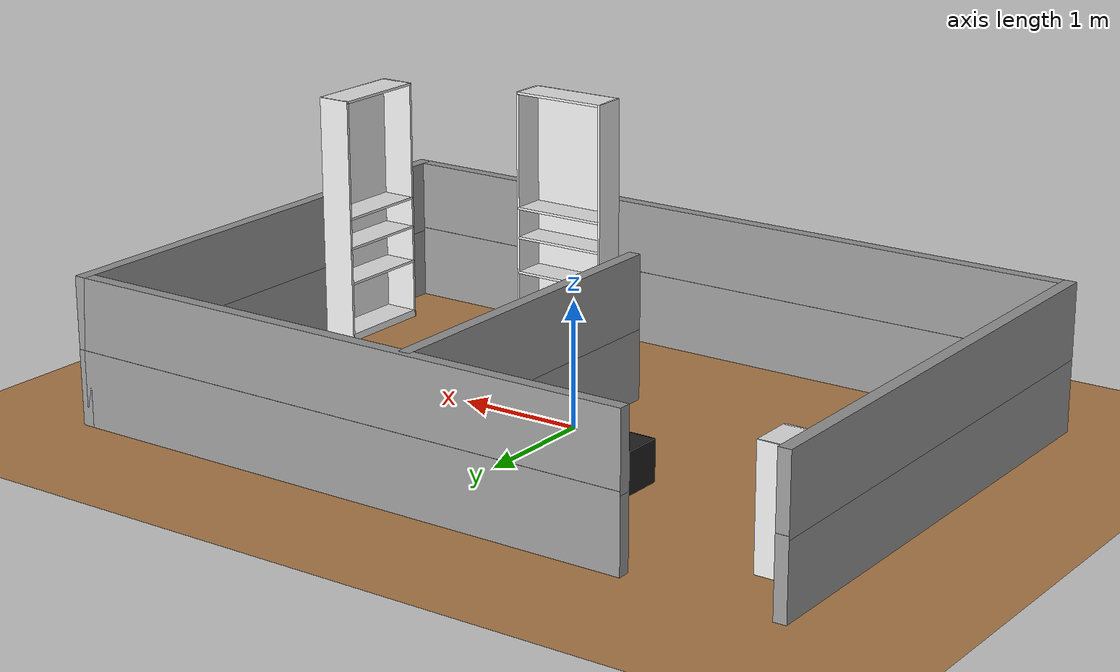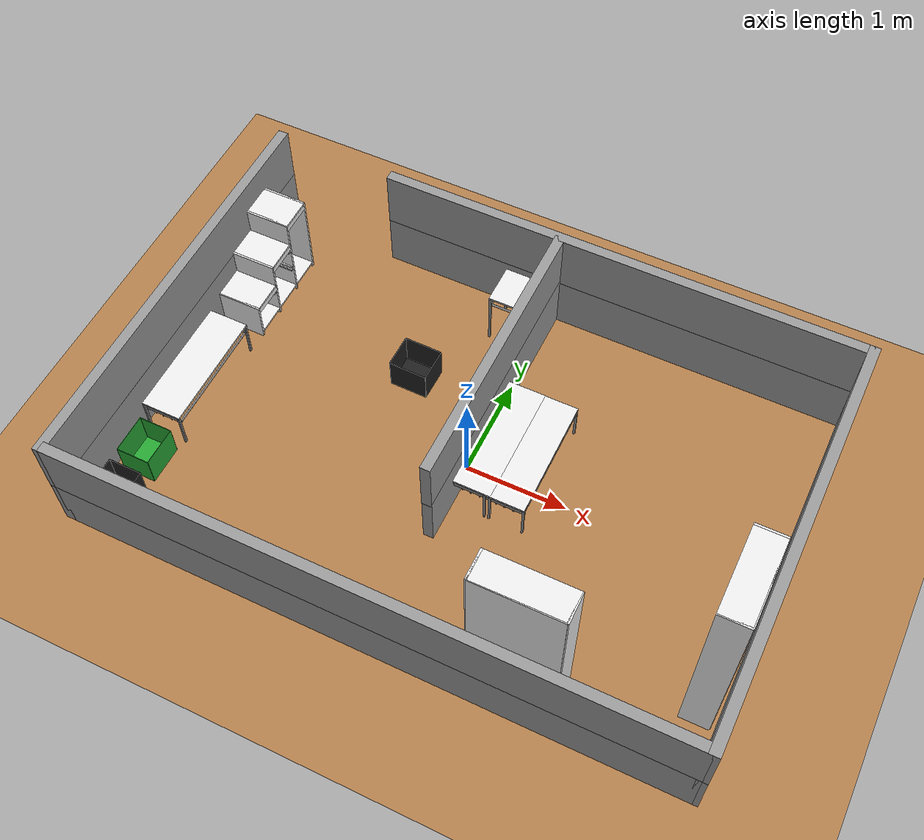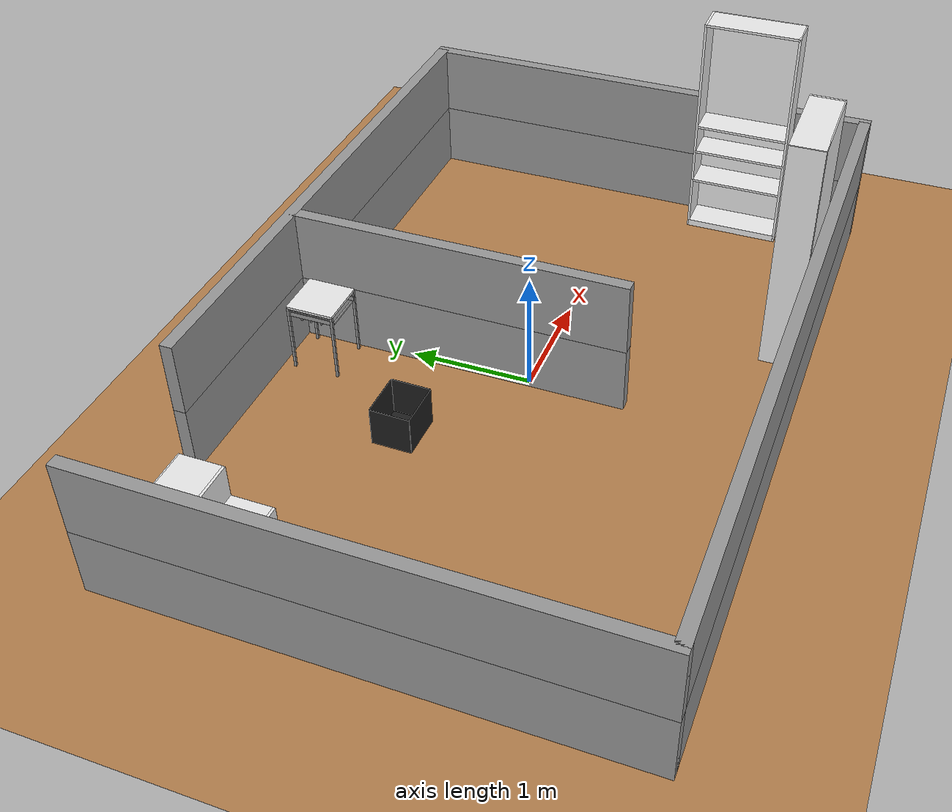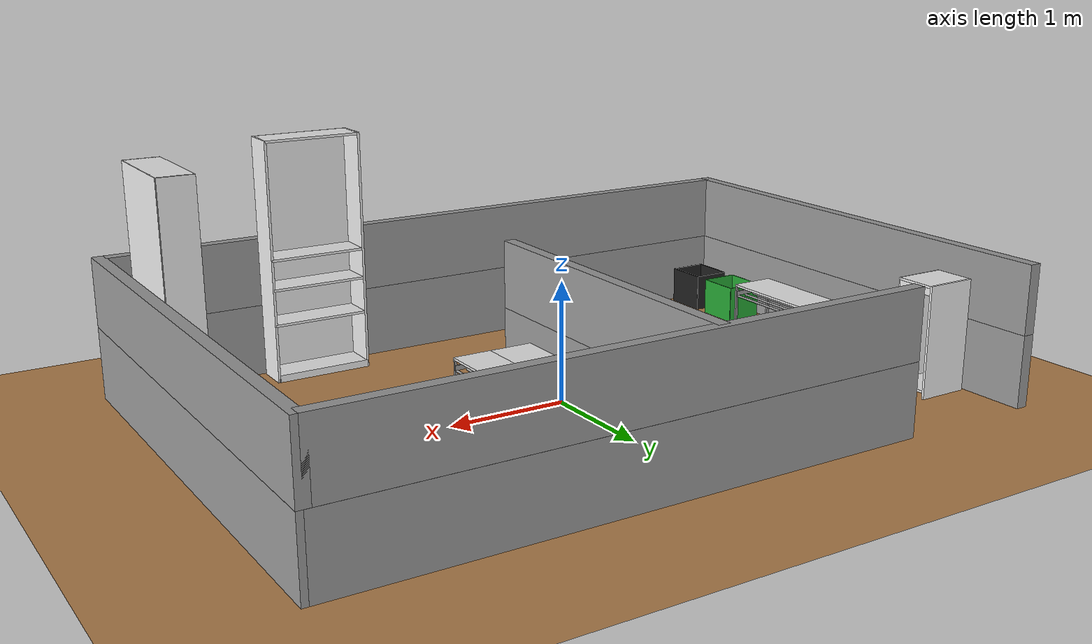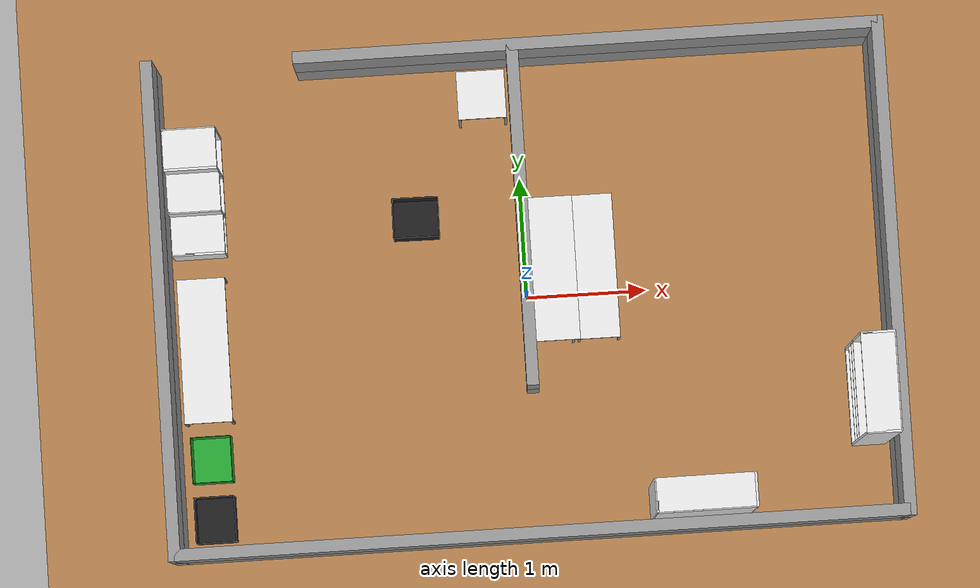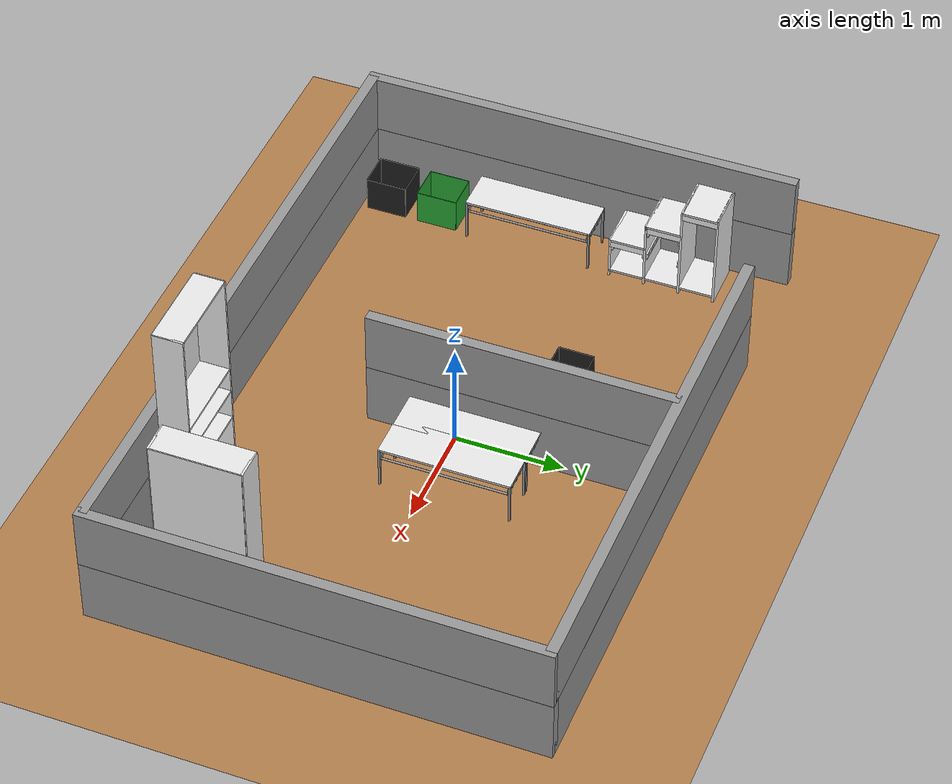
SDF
<sdf version="1.6">
 <world name="default">
  <light name="sun" type="directional">
   <pose>0 0 10 0 -0 0</pose>
   <diffuse>0.8 0.8 0.8 1</diffuse>
   <specular>0.2 0.2 0.2 1</specular>
   <attenuation>
    <range>1000</range>
    <constant>0.9</constant>
    <linear>0.01</linear>
    <quadratic>0.001</quadratic>
   </attenuation>
   <direction>-0.5 0.1 -0.9</direction>
  </light>
  <gravity>0 0 -9.8</gravity>
  <physics name="default_physics" default="0" type="ode">
   <max_step_size>0.001</max_step_size>
   <real_time_factor>1</real_time_factor>
   <real_time_update_rate>1000</real_time_update_rate>
  </physics>
  <scene><ambient>0.4 0.4 0.4 1</ambient><background>0.7 0.7 0.7 1</background><shadows>1</shadows></scene>
  <model name="wrc_ground_plane">
   <static>1</static>
   <link name="link">
    <collision name="collision">
     <geometry><plane><normal>0 0 1</normal><size>10 10</size></plane></geometry>
     <surface>
      <contact><collide_bitmask>65535</collide_bitmask></contact>
      <friction><ode><mu>100</mu><mu2>50</mu2></ode></friction>
     </surface>
    </collision>
    <visual name="visual">
     <cast_shadows>0</cast_shadows>
     <geometry><plane><normal>0 0 1</normal><size>10 10</size></plane></geometry>
     <material>
      <script><uri>model://wrc_ground_plane/materials/wood.material</uri><name>WRS/WoodFloor</name></script>
     </material>
    </visual>
   </link>
  </model>
  <model name="wrc_frame">
   <static>1</static>
   <link name="link">
    <inertial><mass>1</mass></inertial>
    <collision name="wall_back">
     <pose>0.6 2 0.3 0 -0 0</pose>
     <geometry><box><size>4.8 0.1 0.6</size></box></geometry>
    </collision>
    <visual name="wall_back_v">
     <pose>0.6 2 0.3 0 -0 0</pose>
     <geometry><box><size>4.8 0.1 0.6</size></box></geometry>
     <material>
      <script><uri>file://media/materials/scripts/gazebo.material</uri><name>Gazebo/Gray</name></script>
     </material>
    </visual>
    <collision name="wall_front">
     <pose>0 -2 0.3 0 -0 0</pose>
     <geometry><box><size>6 0.1 0.6</size></box></geometry>
    </collision>
    <visual name="wall_front_v">
     <pose>0 -2 0.3 0 -0 0</pose>
     <geometry><box><size>6 0.1 0.6</size></box></geometry>
     <material>
      <script><uri>file://media/materials/scripts/gazebo.material</uri><name>Gazebo/Gray</name></script>
     </material>
    </visual>
    <collision name="wall_left">
     <pose>-3 0 0.3 0 -0 0</pose>
     <geometry><box><size>0.1 4.1 0.6</size></box></geometry>
    </collision>
    <visual name="wall_left_v">
     <pose>-3 0 0.3 0 -0 0</pose>
     <geometry><box><size>0.1 4.1 0.6</size></box></geometry>
     <material>
      <script><uri>file://media/materials/scripts/gazebo.material</uri><name>Gazebo/Gray</name></script>
     </material>
    </visual>
    <collision name="wall_right">
     <pose>3 0 0.3 0 -0 0</pose>
     <geometry><box><size>0.1 4.1 0.6</size></box></geometry>
    </collision>
    <visual name="wall_right_v">
     <pose>3 0 0.3 0 -0 0</pose>
     <geometry><box><size>0.1 4.1 0.6</size></box></geometry>
     <material>
      <script><uri>file://media/materials/scripts/gazebo.material</uri><name>Gazebo/Gray</name></script>
     </material>
    </visual>
    <collision name="wall_center">
     <pose>0 0.6 0.3 0 -0 0</pose>
     <geometry><box><size>0.1 2.8 0.6</size></box></geometry>
    </collision>
    <visual name="wall_center_v">
     <pose>0 0.6 0.3 0 -0 0</pose>
     <geometry><box><size>0.1 2.8 0.6</size></box></geometry>
     <material>
      <script><uri>file://media/materials/scripts/gazebo.material</uri><name>Gazebo/Gray</name></script>
     </material>
    </visual>
   </link>
  </model>
  <model name="wrc_bookshelf">
   <static>1</static>
   <link name="link">
    <inertial><mass>1</mass></inertial>
    <collision name="back">
     <pose>0 0.005 1.01 0 -0 0</pose>
     <geometry><box><size>0.8 0.01 2.02</size></box></geometry>
    </collision>
    <visual name="back_v">
     <pose>0 0.14 1.01 0 -0 0</pose>
     <geometry><box><size>0.8 0.01 2.02</size></box></geometry>
     <material>
      <script><uri>file://media/materials/scripts/gazebo.material</uri><name>Gazebo/White</name></script>
     </material>
    </visual>
    <collision name="left_side">
     <pose>0.4 0 1.01 0 -0 0</pose>
     <geometry><box><size>0.02 0.28 2.02</size></box></geometry>
    </collision>
    <visual name="left_side_v">
     <pose>0.4 0 1.01 0 -0 0</pose>
     <geometry><box><size>0.02 0.28 2.02</size></box></geometry>
     <material>
      <script><uri>file://media/materials/scripts/gazebo.material</uri><name>Gazebo/White</name></script>
     </material>
    </visual>
    <collision name="right_side">
     <pose>-0.4 0 1.01 0 -0 0</pose>
     <geometry><box><size>0.02 0.28 2.02</size></box></geometry>
    </collision>
    <visual name="right_side_v">
     <pose>-0.4 0 1.01 0 -0 0</pose>
     <geometry><box><size>0.02 0.28 2.02</size></box></geometry>
     <material>
      <script><uri>file://media/materials/scripts/gazebo.material</uri><name>Gazebo/White</name></script>
     </material>
    </visual>
    <collision name="bottom">
     <pose>0 0 0.03 0 -0 0</pose>
     <geometry><box><size>0.8 0.28 0.06</size></box></geometry>
    </collision>
    <visual name="bottom_v">
     <pose>0 0 0.03 0 -0 0</pose>
     <geometry><box><size>0.8 0.28 0.06</size></box></geometry>
     <material>
      <script><uri>file://media/materials/scripts/gazebo.material</uri><name>Gazebo/White</name></script>
     </material>
    </visual>
    <collision name="top">
     <pose>0 0 2.01 0 -0 0</pose>
     <geometry><box><size>0.8 0.28 0.02</size></box></geometry>
    </collision>
    <visual name="top_v">
     <pose>0 0 2.01 0 -0 0</pose>
     <geometry><box><size>0.8 0.28 0.02</size></box></geometry>
     <material>
      <script><uri>file://media/materials/scripts/gazebo.material</uri><name>Gazebo/White</name></script>
     </material>
    </visual>
    <collision name="slit1">
     <pose>0 0 0.49 0 -0 0</pose>
     <geometry><box><size>0.8 0.28 0.02</size></box></geometry>
    </collision>
    <visual name="slit1_v">
     <pose>0 0 0.49 0 -0 0</pose>
     <geometry><box><size>0.8 0.28 0.02</size></box></geometry>
     <material>
      <script><uri>file://media/materials/scripts/gazebo.material</uri><name>Gazebo/White</name></script>
     </material>
    </visual>
    <collision name="slit2">
     <pose>0 0 0.79 0 -0 0</pose>
     <geometry><box><size>0.8 0.28 0.02</size></box></geometry>
    </collision>
    <visual name="slit2_v">
     <pose>0 0 0.79 0 -0 0</pose>
     <geometry><box><size>0.8 0.28 0.02</size></box></geometry>
     <material>
      <script><uri>file://media/materials/scripts/gazebo.material</uri><name>Gazebo/White</name></script>
     </material>
    </visual>
    <collision name="slit3">
     <pose>0 0 1.04 0 -0 0</pose>
     <geometry><box><size>0.8 0.28 0.02</size></box></geometry>
    </collision>
    <visual name="slit3_v">
     <pose>0 0 1.04 0 -0 0</pose>
     <geometry><box><size>0.8 0.28 0.02</size></box></geometry>
     <material>
      <script><uri>file://media/materials/scripts/gazebo.material</uri><name>Gazebo/White</name></script>
     </material>
    </visual>
   </link>
   <pose>2.7704 -0.999944 0 0 0 -1.57</pose>
  </model>
  <model name="wrc_bin_black">
   <static>1</static>
   <link name="link">
    <inertial><mass>1</mass></inertial>
    <collision name="bottom">
     <pose>0 0 0.002 0 -0 0</pose>
     <geometry><box><size>0.33 0.38 0.004</size></box></geometry>
    </collision>
    <visual name="bottom_v">
     <pose>0 0 0.002 0 -0 0</pose>
     <geometry><box><size>0.33 0.38 0.004</size></box></geometry>
     <material>
      <script><uri>file://media/materials/scripts/gazebo.material</uri><name>Gazebo/Black</name></script>
     </material>
    </visual>
    <collision name="front">
     <pose>0 0.19 0.165 0 -0 0</pose>
     <geometry><box><size>0.33 0.004 0.33</size></box></geometry>
    </collision>
    <visual name="front_v">
     <pose>0 0.19 0.165 0 -0 0</pose>
     <geometry><box><size>0.33 0.004 0.33</size></box></geometry>
     <material>
      <script><uri>file://media/materials/scripts/gazebo.material</uri><name>Gazebo/Black</name></script>
     </material>
    </visual>
    <collision name="back">
     <pose>0 -0.19 0.165 0 -0 0</pose>
     <geometry><box><size>0.33 0.004 0.33</size></box></geometry>
    </collision>
    <visual name="back_v">
     <pose>0 -0.19 0.165 0 -0 0</pose>
     <geometry><box><size>0.33 0.004 0.33</size></box></geometry>
     <material>
      <script><uri>file://media/materials/scripts/gazebo.material</uri><name>Gazebo/Black</name></script>
     </material>
    </visual>
    <collision name="left">
     <pose>0.165 0 0.165 0 -0 0</pose>
     <geometry><box><size>0.004 0.38 0.33</size></box></geometry>
    </collision>
    <visual name="left_v">
     <pose>0.165 0 0.165 0 -0 0</pose>
     <geometry><box><size>0.004 0.38 0.33</size></box></geometry>
     <material>
      <script><uri>file://media/materials/scripts/gazebo.material</uri><name>Gazebo/Black</name></script>
     </material>
    </visual>
    <collision name="right">
     <pose>-0.165 0 0.165 0 -0 0</pose>
     <geometry><box><size>0.004 0.38 0.33</size></box></geometry>
    </collision>
    <visual name="right_v">
     <pose>-0.165 0 0.165 0 -0 0</pose>
     <geometry><box><size>0.004 0.38 0.33</size></box></geometry>
     <material>
      <script><uri>file://media/materials/scripts/gazebo.material</uri><name>Gazebo/Black</name></script>
     </material>
    </visual>
   </link>
   <pose>-2.7 -1.7 0 0 -0 0</pose>
  </model>
  <model name="wrc_bin_green">
   <static>1</static>
   <link name="link">
    <inertial><mass>1</mass></inertial>
    <collision name="bottom">
     <pose>0 0 0.002 0 -0 0</pose>
     <geometry><box><size>0.33 0.38 0.004</size></box></geometry>
    </collision>
    <visual name="bottom_v">
     <pose>0 0 0.002 0 -0 0</pose>
     <geometry><box><size>0.33 0.38 0.004</size></box></geometry>
     <material>
      <script><uri>file://media/materials/scripts/gazebo.material</uri><name>Gazebo/Green</name></script>
     </material>
    </visual>
    <collision name="front">
     <pose>0 0.19 0.165 0 -0 0</pose>
     <geometry><box><size>0.33 0.004 0.33</size></box></geometry>
    </collision>
    <visual name="front_v">
     <pose>0 0.19 0.165 0 -0 0</pose>
     <geometry><box><size>0.33 0.004 0.33</size></box></geometry>
     <material>
      <script><uri>file://media/materials/scripts/gazebo.material</uri><name>Gazebo/Green</name></script>
     </material>
    </visual>
    <collision name="back">
     <pose>0 -0.19 0.165 0 -0 0</pose>
     <geometry><box><size>0.33 0.004 0.33</size></box></geometry>
    </collision>
    <visual name="back_v">
     <pose>0 -0.19 0.165 0 -0 0</pose>
     <geometry><box><size>0.33 0.004 0.33</size></box></geometry>
     <material>
      <script><uri>file://media/materials/scripts/gazebo.material</uri><name>Gazebo/Green</name></script>
     </material>
    </visual>
    <collision name="left">
     <pose>0.165 0 0.165 0 -0 0</pose>
     <geometry><box><size>0.004 0.38 0.33</size></box></geometry>
    </collision>
    <visual name="left_v">
     <pose>0.165 0 0.165 0 -0 0</pose>
     <geometry><box><size>0.004 0.38 0.33</size></box></geometry>
     <material>
      <script><uri>file://media/materials/scripts/gazebo.material</uri><name>Gazebo/Green</name></script>
     </material>
    </visual>
    <collision name="right">
     <pose>-0.165 0 0.165 0 -0 0</pose>
     <geometry><box><size>0.004 0.38 0.33</size></box></geometry>
    </collision>
    <visual name="right_v">
     <pose>-0.165 0 0.165 0 -0 0</pose>
     <geometry><box><size>0.004 0.38 0.33</size></box></geometry>
     <material>
      <script><uri>file://media/materials/scripts/gazebo.material</uri><name>Gazebo/Green</name></script>
     </material>
    </visual>
   </link>
   <pose>-2.7 -1.2 0 0 -0 0</pose>
  </model>
  <model name="wrc_stair_like_drawer">
   <static>1</static>
   <link name="link">
    <inertial><mass>1</mass></inertial>
    <collision name="slit1">
     <pose>0 -0.495 0.21 0 -0 0</pose>
     <geometry><box><size>0.44 0.02 0.42</size></box></geometry>
    </collision>
    <visual name="slit1_v">
     <pose>0 -0.495 0.21 0 -0 0</pose>
     <geometry><box><size>0.44 0.02 0.42</size></box></geometry>
     <material>
      <script><uri>file://media/materials/scripts/gazebo.material</uri><name>Gazebo/White</name></script>
     </material>
    </visual>
    <collision name="holder_slit1_1_left_low">
     <pose>0 -0.48 0.3 0 -0 0</pose>
     <geometry><box><size>0.42 0.02 0.02</size></box></geometry>
    </collision>
    <visual name="holder_slit1_1_left_low_v">
     <pose>0 -0.48 0.3 0 -0 0</pose>
     <geometry><box><size>0.42 0.02 0.02</size></box></geometry>
     <material>
      <script><uri>file://media/materials/scripts/gazebo.material</uri><name>Gazebo/White</name></script>
     </material>
    </visual>
    <collision name="holder_slit1_1_left_high">
     <pose>0 -0.48 0.34 0 -0 0</pose>
     <geometry><box><size>0.42 0.02 0.02</size></box></geometry>
    </collision>
    <visual name="holder_slit1_1_left_high_v">
     <pose>0 -0.48 0.34 0 -0 0</pose>
     <geometry><box><size>0.42 0.02 0.02</size></box></geometry>
     <material>
      <script><uri>file://media/materials/scripts/gazebo.material</uri><name>Gazebo/White</name></script>
     </material>
    </visual>
    <collision name="holder_slit1_1_right_low">
     <pose>0 -0.18 0.3 0 -0 0</pose>
     <geometry><box><size>0.42 0.02 0.02</size></box></geometry>
    </collision>
    <visual name="holder_slit1_1_right_low_v">
     <pose>0 -0.18 0.3 0 -0 0</pose>
     <geometry><box><size>0.42 0.02 0.02</size></box></geometry>
     <material>
      <script><uri>file://media/materials/scripts/gazebo.material</uri><name>Gazebo/White</name></script>
     </material>
    </visual>
    <collision name="holder_slit1_1_right_high">
     <pose>0 -0.18 0.34 0 -0 0</pose>
     <geometry><box><size>0.42 0.02 0.02</size></box></geometry>
    </collision>
    <visual name="holder_slit1_1_right_high_v">
     <pose>0 -0.18 0.34 0 -0 0</pose>
     <geometry><box><size>0.42 0.02 0.02</size></box></geometry>
     <material>
      <script><uri>file://media/materials/scripts/gazebo.material</uri><name>Gazebo/White</name></script>
     </material>
    </visual>
    <collision name="slit2">
     <pose>0 -0.165 0.34 0 -0 0</pose>
     <geometry><box><size>0.44 0.02 0.68</size></box></geometry>
    </collision>
    <visual name="slit2_v">
     <pose>0 -0.165 0.34 0 -0 0</pose>
     <geometry><box><size>0.44 0.02 0.68</size></box></geometry>
     <material>
      <script><uri>file://media/materials/scripts/gazebo.material</uri><name>Gazebo/White</name></script>
     </material>
    </visual>
    <collision name="holder_slit2_1_left_low">
     <pose>0 -0.15 0.3 0 -0 0</pose>
     <geometry><box><size>0.42 0.02 0.02</size></box></geometry>
    </collision>
    <visual name="holder_slit2_1_left_low_v">
     <pose>0 -0.15 0.3 0 -0 0</pose>
     <geometry><box><size>0.42 0.02 0.02</size></box></geometry>
     <material>
      <script><uri>file://media/materials/scripts/gazebo.material</uri><name>Gazebo/White</name></script>
     </material>
    </visual>
    <collision name="holder_slit2_1_left_high">
     <pose>0 -0.15 0.34 0 -0 0</pose>
     <geometry><box><size>0.42 0.02 0.02</size></box></geometry>
    </collision>
    <visual name="holder_slit2_1_left_high_v">
     <pose>0 -0.15 0.34 0 -0 0</pose>
     <geometry><box><size>0.42 0.02 0.02</size></box></geometry>
     <material>
      <script><uri>file://media/materials/scripts/gazebo.material</uri><name>Gazebo/White</name></script>
     </material>
    </visual>
    <collision name="holder_slit2_1_right_low">
     <pose>0 0.15 0.3 0 -0 0</pose>
     <geometry><box><size>0.42 0.02 0.02</size></box></geometry>
    </collision>
    <visual name="holder_slit2_1_right_low_v">
     <pose>0 0.15 0.3 0 -0 0</pose>
     <geometry><box><size>0.42 0.02 0.02</size></box></geometry>
     <material>
      <script><uri>file://media/materials/scripts/gazebo.material</uri><name>Gazebo/White</name></script>
     </material>
    </visual>
    <collision name="holder_slit2_1_right_high">
     <pose>0 0.15 0.34 0 -0 0</pose>
     <geometry><box><size>0.42 0.02 0.02</size></box></geometry>
    </collision>
    <visual name="holder_slit2_1_right_high_v">
     <pose>0 0.15 0.34 0 -0 0</pose>
     <geometry><box><size>0.42 0.02 0.02</size></box></geometry>
     <material>
      <script><uri>file://media/materials/scripts/gazebo.material</uri><name>Gazebo/White</name></script>
     </material>
    </visual>
    <collision name="holder_slit2_2_left_low">
     <pose>0 -0.15 0.56 0 -0 0</pose>
     <geometry><box><size>0.42 0.02 0.02</size></box></geometry>
    </collision>
    <visual name="holder_slit2_2_left_low_v">
     <pose>0 -0.15 0.56 0 -0 0</pose>
     <geometry><box><size>0.42 0.02 0.02</size></box></geometry>
     <material>
      <script><uri>file://media/materials/scripts/gazebo.material</uri><name>Gazebo/White</name></script>
     </material>
    </visual>
    <collision name="holder_slit2_2_left_high">
     <pose>0 -0.15 0.6 0 -0 0</pose>
     <geometry><box><size>0.42 0.02 0.02</size></box></geometry>
    </collision>
    <visual name="holder_slit2_2_left_high_v">
     <pose>0 -0.15 0.6 0 -0 0</pose>
     <geometry><box><size>0.42 0.02 0.02</size></box></geometry>
     <material>
      <script><uri>file://media/materials/scripts/gazebo.material</uri><name>Gazebo/White</name></script>
     </material>
    </visual>
    <collision name="holder_slit2_2_right_low">
     <pose>0 0.15 0.56 0 -0 0</pose>
     <geometry><box><size>0.42 0.02 0.02</size></box></geometry>
    </collision>
    <visual name="holder_slit2_2_right_low_v">
     <pose>0 0.15 0.56 0 -0 0</pose>
     <geometry><box><size>0.42 0.02 0.02</size></box></geometry>
     <material>
      <script><uri>file://media/materials/scripts/gazebo.material</uri><name>Gazebo/White</name></script>
     </material>
    </visual>
    <collision name="holder_slit2_2_right_high">
     <pose>0 0.15 0.6 0 -0 0</pose>
     <geometry><box><size>0.42 0.02 0.02</size></box></geometry>
    </collision>
    <visual name="holder_slit2_2_right_high_v">
     <pose>0 0.15 0.6 0 -0 0</pose>
     <geometry><box><size>0.42 0.02 0.02</size></box></geometry>
     <material>
      <script><uri>file://media/materials/scripts/gazebo.material</uri><name>Gazebo/White</name></script>
     </material>
    </visual>
    <collision name="slit3">
     <pose>0 0.165 0.47 0 -0 0</pose>
     <geometry><box><size>0.44 0.02 0.94</size></box></geometry>
    </collision>
    <visual name="slit3_v">
     <pose>0 0.165 0.47 0 -0 0</pose>
     <geometry><box><size>0.44 0.02 0.94</size></box></geometry>
     <material>
      <script><uri>file://media/materials/scripts/gazebo.material</uri><name>Gazebo/White</name></script>
     </material>
    </visual>
    <collision name="slit4">
     <pose>0 0.495 0.47 0 -0 0</pose>
     <geometry><box><size>0.44 0.02 0.94</size></box></geometry>
    </collision>
    <visual name="slit4_v">
     <pose>0 0.495 0.47 0 -0 0</pose>
     <geometry><box><size>0.44 0.02 0.94</size></box></geometry>
     <material>
      <script><uri>file://media/materials/scripts/gazebo.material</uri><name>Gazebo/White</name></script>
     </material>
    </visual>
    <collision name="top1">
     <pose>0 -0.33 0.41 0 -0 0</pose>
     <geometry><box><size>0.44 0.33 0.02</size></box></geometry>
    </collision>
    <visual name="top1_v">
     <pose>0 -0.33 0.41 0 -0 0</pose>
     <geometry><box><size>0.44 0.33 0.02</size></box></geometry>
     <material>
      <script><uri>file://media/materials/scripts/gazebo.material</uri><name>Gazebo/White</name></script>
     </material>
    </visual>
    <collision name="top1_front">
     <pose>0.21 -0.33 0.37 0 -0 0</pose>
     <geometry><box><size>0.02 0.33 0.06</size></box></geometry>
    </collision>
    <visual name="top1_front_v">
     <pose>0.21 -0.33 0.37 0 -0 0</pose>
     <geometry><box><size>0.02 0.33 0.06</size></box></geometry>
     <material>
      <script><uri>file://media/materials/scripts/gazebo.material</uri><name>Gazebo/White</name></script>
     </material>
    </visual>
    <collision name="top2">
     <pose>0 0 0.67 0 -0 0</pose>
     <geometry><box><size>0.44 0.33 0.02</size></box></geometry>
    </collision>
    <visual name="top2_v">
     <pose>0 0 0.67 0 -0 0</pose>
     <geometry><box><size>0.44 0.33 0.02</size></box></geometry>
     <material>
      <script><uri>file://media/materials/scripts/gazebo.material</uri><name>Gazebo/White</name></script>
     </material>
    </visual>
    <collision name="top2_front">
     <pose>0.21 0 0.63 0 -0 0</pose>
     <geometry><box><size>0.02 0.33 0.06</size></box></geometry>
    </collision>
    <visual name="top2_front_v">
     <pose>0.21 0 0.63 0 -0 0</pose>
     <geometry><box><size>0.02 0.33 0.06</size></box></geometry>
     <material>
      <script><uri>file://media/materials/scripts/gazebo.material</uri><name>Gazebo/White</name></script>
     </material>
    </visual>
    <collision name="top3">
     <pose>0 0.33 0.93 0 -0 0</pose>
     <geometry><box><size>0.44 0.33 0.02</size></box></geometry>
    </collision>
    <visual name="top3_v">
     <pose>0 0.33 0.93 0 -0 0</pose>
     <geometry><box><size>0.44 0.33 0.02</size></box></geometry>
     <material>
      <script><uri>file://media/materials/scripts/gazebo.material</uri><name>Gazebo/White</name></script>
     </material>
    </visual>
    <collision name="top3_front">
     <pose>0.21 0.33 0.89 0 -0 0</pose>
     <geometry><box><size>0.02 0.33 0.06</size></box></geometry>
    </collision>
    <visual name="top3_front_v">
     <pose>0.21 0.33 0.89 0 -0 0</pose>
     <geometry><box><size>0.02 0.33 0.06</size></box></geometry>
     <material>
      <script><uri>file://media/materials/scripts/gazebo.material</uri><name>Gazebo/White</name></script>
     </material>
    </visual>
    <collision name="bottom">
     <pose>0 0 0.06 0 -0 0</pose>
     <geometry><box><size>0.44 0.99 0.02</size></box></geometry>
    </collision>
    <visual name="bottom_v">
     <pose>0 0 0.06 0 -0 0</pose>
     <geometry><box><size>0.44 0.99 0.02</size></box></geometry>
     <material>
      <script><uri>file://media/materials/scripts/gazebo.material</uri><name>Gazebo/White</name></script>
     </material>
    </visual>
   </link>
   <pose>-2.7 1 0 0 -0 0</pose>
  </model>
  <model name="wrc_tall_table">
   <static>1</static>
   <link name="link">
    <inertial><mass>1</mass></inertial>
    <collision name="top">
     <pose>0 0 0.59 0 -0 0</pose>
     <geometry><box><size>0.4 0.4 0.02</size></box></geometry>
    </collision>
    <visual name="top_v">
     <pose>0 0 0.59 0 -0 0</pose>
     <geometry><box><size>0.4 0.4 0.02</size></box></geometry>
     <material>
      <script><uri>file://media/materials/scripts/gazebo.material</uri><name>Gazebo/White</name></script>
     </material>
    </visual>
    <collision name="leg1">
     <pose>0.19 0.19 0.285 0 -0 0</pose>
     <geometry><box><size>0.02 0.02 0.6</size></box></geometry>
    </collision>
    <visual name="leg1_v">
     <pose>0.19 0.19 0.285 0 -0 0</pose>
     <geometry><box><size>0.02 0.02 0.6</size></box></geometry>
     <material>
      <script><uri>file://media/materials/scripts/gazebo.material</uri><name>Gazebo/Gray</name></script>
     </material>
    </visual>
    <collision name="leg2">
     <pose>-0.19 0.19 0.285 0 -0 0</pose>
     <geometry><box><size>0.02 0.02 0.6</size></box></geometry>
    </collision>
    <visual name="leg2_v">
     <pose>-0.19 0.19 0.285 0 -0 0</pose>
     <geometry><box><size>0.02 0.02 0.6</size></box></geometry>
     <material>
      <script><uri>file://media/materials/scripts/gazebo.material</uri><name>Gazebo/Gray</name></script>
     </material>
    </visual>
    <collision name="leg3">
     <pose>0.19 -0.19 0.285 0 -0 0</pose>
     <geometry><box><size>0.02 0.02 0.6</size></box></geometry>
    </collision>
    <visual name="leg3_v">
     <pose>0.19 -0.19 0.285 0 -0 0</pose>
     <geometry><box><size>0.02 0.02 0.6</size></box></geometry>
     <material>
      <script><uri>file://media/materials/scripts/gazebo.material</uri><name>Gazebo/Gray</name></script>
     </material>
    </visual>
    <collision name="leg4">
     <pose>-0.19 -0.19 0.285 0 -0 0</pose>
     <geometry><box><size>0.02 0.02 0.6</size></box></geometry>
    </collision>
    <visual name="leg4_v">
     <pose>-0.19 -0.19 0.285 0 -0 0</pose>
     <geometry><box><size>0.02 0.02 0.6</size></box></geometry>
     <material>
      <script><uri>file://media/materials/scripts/gazebo.material</uri><name>Gazebo/Gray</name></script>
     </material>
    </visual>
    <collision name="side_panel1">
     <pose>0.175 0 0.52 0 -0 0</pose>
     <geometry><box><size>0.01 0.4 0.04</size></box></geometry>
    </collision>
    <visual name="side_panel1_v">
     <pose>0.175 0 0.52 0 -0 0</pose>
     <geometry><box><size>0.01 0.4 0.04</size></box></geometry>
     <material>
      <script><uri>file://media/materials/scripts/gazebo.material</uri><name>Gazebo/Gray</name></script>
     </material>
    </visual>
    <collision name="side_panel2">
     <pose>-0.175 0 0.52 0 -0 0</pose>
     <geometry><box><size>0.01 0.4 0.04</size></box></geometry>
    </collision>
    <visual name="side_panel2_v">
     <pose>-0.175 0 0.52 0 -0 0</pose>
     <geometry><box><size>0.01 0.4 0.04</size></box></geometry>
     <material>
      <script><uri>file://media/materials/scripts/gazebo.material</uri><name>Gazebo/Gray</name></script>
     </material>
    </visual>
    <collision name="bar1">
     <pose>0 0.2 0.49 0 1.57 0</pose>
     <geometry><cylinder><radius>0.01</radius><length>0.36</length></cylinder></geometry>
    </collision>
    <visual name="bar1_v">
     <pose>0 0.19 0.49 0 1.57 0</pose>
     <geometry><cylinder><radius>0.01</radius><length>0.36</length></cylinder></geometry>
     <material>
      <script><uri>file://media/materials/scripts/gazebo.material</uri><name>Gazebo/Gray</name></script>
     </material>
    </visual>
    <collision name="bar2">
     <pose>0 0.08 0.49 0 1.57 0</pose>
     <geometry><cylinder><radius>0.01</radius><length>0.36</length></cylinder></geometry>
    </collision>
    <visual name="bar2_v">
     <pose>0 0.08 0.49 0 1.57 0</pose>
     <geometry><cylinder><radius>0.01</radius><length>0.36</length></cylinder></geometry>
     <material>
      <script><uri>file://media/materials/scripts/gazebo.material</uri><name>Gazebo/Gray</name></script>
     </material>
    </visual>
    <collision name="bar3">
     <pose>0 0 0.49 0 1.57 0</pose>
     <geometry><cylinder><radius>0.01</radius><length>0.36</length></cylinder></geometry>
    </collision>
    <visual name="bar3_v">
     <pose>0 0 0.49 0 1.57 0</pose>
     <geometry><cylinder><radius>0.01</radius><length>0.36</length></cylinder></geometry>
     <material>
      <script><uri>file://media/materials/scripts/gazebo.material</uri><name>Gazebo/Gray</name></script>
     </material>
    </visual>
    <collision name="bar4">
     <pose>0 -0.08 0.49 0 1.57 0</pose>
     <geometry><cylinder><radius>0.01</radius><length>0.36</length></cylinder></geometry>
    </collision>
    <visual name="bar4_v">
     <pose>0 -0.09 0.49 0 1.57 0</pose>
     <geometry><cylinder><radius>0.01</radius><length>0.36</length></cylinder></geometry>
     <material>
      <script><uri>file://media/materials/scripts/gazebo.material</uri><name>Gazebo/Gray</name></script>
     </material>
    </visual>
    <collision name="bar5">
     <pose>0 -0.18 0.49 0 1.57 0</pose>
     <geometry><cylinder><radius>0.01</radius><length>0.36</length></cylinder></geometry>
    </collision>
    <visual name="bar5_v">
     <pose>0 -0.18 0.49 0 1.57 0</pose>
     <geometry><cylinder><radius>0.01</radius><length>0.36</length></cylinder></geometry>
     <material>
      <script><uri>file://media/materials/scripts/gazebo.material</uri><name>Gazebo/Gray</name></script>
     </material>
    </visual>
   </link>
   <pose>-0.276131 1.66567 0 0 -0 0</pose>
  </model>
  <model name="wrc_long_table">
   <static>1</static>
   <link name="link">
    <inertial><mass>1</mass></inertial>
    <collision name="top">
     <pose>0 0 0.39 0 -0 0</pose>
     <geometry><box><size>1.2 0.4 0.02</size></box></geometry>
    </collision>
    <visual name="top_v">
     <pose>0 0 0.39 0 -0 0</pose>
     <geometry><box><size>1.2 0.4 0.02</size></box></geometry>
     <material>
      <script><uri>file://media/materials/scripts/gazebo.material</uri><name>Gazebo/White</name></script>
     </material>
    </visual>
    <collision name="leg1">
     <pose>0.59 0.19 0.185 0 -0 0</pose>
     <geometry><box><size>0.02 0.02 0.4</size></box></geometry>
    </collision>
    <visual name="leg1_v">
     <pose>0.59 0.19 0.185 0 -0 0</pose>
     <geometry><box><size>0.02 0.02 0.4</size></box></geometry>
     <material>
      <script><uri>file://media/materials/scripts/gazebo.material</uri><name>Gazebo/Gray</name></script>
     </material>
    </visual>
    <collision name="leg2">
     <pose>-0.59 0.19 0.185 0 -0 0</pose>
     <geometry><box><size>0.02 0.02 0.4</size></box></geometry>
    </collision>
    <visual name="leg2_v">
     <pose>-0.59 0.19 0.185 0 -0 0</pose>
     <geometry><box><size>0.02 0.02 0.4</size></box></geometry>
     <material>
      <script><uri>file://media/materials/scripts/gazebo.material</uri><name>Gazebo/Gray</name></script>
     </material>
    </visual>
    <collision name="leg3">
     <pose>0.59 -0.19 0.185 0 -0 0</pose>
     <geometry><box><size>0.02 0.02 0.4</size></box></geometry>
    </collision>
    <visual name="leg3_v">
     <pose>0.59 -0.19 0.185 0 -0 0</pose>
     <geometry><box><size>0.02 0.02 0.4</size></box></geometry>
     <material>
      <script><uri>file://media/materials/scripts/gazebo.material</uri><name>Gazebo/Gray</name></script>
     </material>
    </visual>
    <collision name="leg4">
     <pose>-0.59 -0.19 0.185 0 -0 0</pose>
     <geometry><box><size>0.02 0.02 0.4</size></box></geometry>
    </collision>
    <visual name="leg4_v">
     <pose>-0.59 -0.19 0.185 0 -0 0</pose>
     <geometry><box><size>0.02 0.02 0.4</size></box></geometry>
     <material>
      <script><uri>file://media/materials/scripts/gazebo.material</uri><name>Gazebo/Gray</name></script>
     </material>
    </visual>
    <collision name="side_panel1">
     <pose>0.575 0 0.32 0 -0 0</pose>
     <geometry><box><size>0.01 0.4 0.04</size></box></geometry>
    </collision>
    <visual name="side_panel1_v">
     <pose>0.575 0 0.32 0 -0 0</pose>
     <geometry><box><size>0.01 0.4 0.04</size></box></geometry>
     <material>
      <script><uri>file://media/materials/scripts/gazebo.material</uri><name>Gazebo/Gray</name></script>
     </material>
    </visual>
    <collision name="side_panel2">
     <pose>-0.575 0 0.32 0 -0 0</pose>
     <geometry><box><size>0.01 0.4 0.04</size></box></geometry>
    </collision>
    <visual name="side_panel2_v">
     <pose>-0.575 0 0.32 0 -0 0</pose>
     <geometry><box><size>0.01 0.4 0.04</size></box></geometry>
     <material>
      <script><uri>file://media/materials/scripts/gazebo.material</uri><name>Gazebo/Gray</name></script>
     </material>
    </visual>
    <collision name="bar1">
     <pose>0 0.2 0.29 0 1.57 0</pose>
     <geometry><cylinder><radius>0.01</radius><length>1.16</length></cylinder></geometry>
    </collision>
    <visual name="bar1_v">
     <pose>0 0.19 0.29 0 1.57 0</pose>
     <geometry><cylinder><radius>0.01</radius><length>1.16</length></cylinder></geometry>
     <material>
      <script><uri>file://media/materials/scripts/gazebo.material</uri><name>Gazebo/Gray</name></script>
     </material>
    </visual>
    <collision name="bar2">
     <pose>0 0.08 0.29 0 1.57 0</pose>
     <geometry><cylinder><radius>0.01</radius><length>1.16</length></cylinder></geometry>
    </collision>
    <visual name="bar2_v">
     <pose>0 0.08 0.29 0 1.57 0</pose>
     <geometry><cylinder><radius>0.01</radius><length>1.16</length></cylinder></geometry>
     <material>
      <script><uri>file://media/materials/scripts/gazebo.material</uri><name>Gazebo/Gray</name></script>
     </material>
    </visual>
    <collision name="bar3">
     <pose>0 0 0.29 0 1.57 0</pose>
     <geometry><cylinder><radius>0.01</radius><length>1.16</length></cylinder></geometry>
    </collision>
    <visual name="bar3_v">
     <pose>0 0 0.29 0 1.57 0</pose>
     <geometry><cylinder><radius>0.01</radius><length>1.16</length></cylinder></geometry>
     <material>
      <script><uri>file://media/materials/scripts/gazebo.material</uri><name>Gazebo/Gray</name></script>
     </material>
    </visual>
    <collision name="bar4">
     <pose>0 -0.08 0.29 0 1.57 0</pose>
     <geometry><cylinder><radius>0.01</radius><length>1.16</length></cylinder></geometry>
    </collision>
    <visual name="bar4_v">
     <pose>0 -0.09 0.29 0 1.57 0</pose>
     <geometry><cylinder><radius>0.01</radius><length>1.16</length></cylinder></geometry>
     <material>
      <script><uri>file://media/materials/scripts/gazebo.material</uri><name>Gazebo/Gray</name></script>
     </material>
    </visual>
    <collision name="bar5">
     <pose>0 -0.18 0.29 0 1.57 0</pose>
     <geometry><cylinder><radius>0.01</radius><length>1.16</length></cylinder></geometry>
    </collision>
    <visual name="bar5_v">
     <pose>0 -0.18 0.29 0 1.57 0</pose>
     <geometry><cylinder><radius>0.01</radius><length>1.16</length></cylinder></geometry>
     <material>
      <script><uri>file://media/materials/scripts/gazebo.material</uri><name>Gazebo/Gray</name></script>
     </material>
    </visual>
   </link>
   <pose>0.552742 0.199468 0 0 -0 1.57084</pose>
  </model>
  <model name="wrc_long_table_0">
   <static>1</static>
   <link name="link">
    <inertial><mass>1</mass></inertial>
    <collision name="top">
     <pose>0 0 0.39 0 -0 0</pose>
     <geometry><box><size>1.2 0.4 0.02</size></box></geometry>
    </collision>
    <visual name="top_v">
     <pose>0 0 0.39 0 -0 0</pose>
     <geometry><box><size>1.2 0.4 0.02</size></box></geometry>
     <material>
      <script><uri>file://media/materials/scripts/gazebo.material</uri><name>Gazebo/White</name></script>
     </material>
    </visual>
    <collision name="leg1">
     <pose>0.59 0.19 0.185 0 -0 0</pose>
     <geometry><box><size>0.02 0.02 0.4</size></box></geometry>
    </collision>
    <visual name="leg1_v">
     <pose>0.59 0.19 0.185 0 -0 0</pose>
     <geometry><box><size>0.02 0.02 0.4</size></box></geometry>
     <material>
      <script><uri>file://media/materials/scripts/gazebo.material</uri><name>Gazebo/Gray</name></script>
     </material>
    </visual>
    <collision name="leg2">
     <pose>-0.59 0.19 0.185 0 -0 0</pose>
     <geometry><box><size>0.02 0.02 0.4</size></box></geometry>
    </collision>
    <visual name="leg2_v">
     <pose>-0.59 0.19 0.185 0 -0 0</pose>
     <geometry><box><size>0.02 0.02 0.4</size></box></geometry>
     <material>
      <script><uri>file://media/materials/scripts/gazebo.material</uri><name>Gazebo/Gray</name></script>
     </material>
    </visual>
    <collision name="leg3">
     <pose>0.59 -0.19 0.185 0 -0 0</pose>
     <geometry><box><size>0.02 0.02 0.4</size></box></geometry>
    </collision>
    <visual name="leg3_v">
     <pose>0.59 -0.19 0.185 0 -0 0</pose>
     <geometry><box><size>0.02 0.02 0.4</size></box></geometry>
     <material>
      <script><uri>file://media/materials/scripts/gazebo.material</uri><name>Gazebo/Gray</name></script>
     </material>
    </visual>
    <collision name="leg4">
     <pose>-0.59 -0.19 0.185 0 -0 0</pose>
     <geometry><box><size>0.02 0.02 0.4</size></box></geometry>
    </collision>
    <visual name="leg4_v">
     <pose>-0.59 -0.19 0.185 0 -0 0</pose>
     <geometry><box><size>0.02 0.02 0.4</size></box></geometry>
     <material>
      <script><uri>file://media/materials/scripts/gazebo.material</uri><name>Gazebo/Gray</name></script>
     </material>
    </visual>
    <collision name="side_panel1">
     <pose>0.575 0 0.32 0 -0 0</pose>
     <geometry><box><size>0.01 0.4 0.04</size></box></geometry>
    </collision>
    <visual name="side_panel1_v">
     <pose>0.575 0 0.32 0 -0 0</pose>
     <geometry><box><size>0.01 0.4 0.04</size></box></geometry>
     <material>
      <script><uri>file://media/materials/scripts/gazebo.material</uri><name>Gazebo/Gray</name></script>
     </material>
    </visual>
    <collision name="side_panel2">
     <pose>-0.575 0 0.32 0 -0 0</pose>
     <geometry><box><size>0.01 0.4 0.04</size></box></geometry>
    </collision>
    <visual name="side_panel2_v">
     <pose>-0.575 0 0.32 0 -0 0</pose>
     <geometry><box><size>0.01 0.4 0.04</size></box></geometry>
     <material>
      <script><uri>file://media/materials/scripts/gazebo.material</uri><name>Gazebo/Gray</name></script>
     </material>
    </visual>
    <collision name="bar1">
     <pose>0 0.2 0.29 0 1.57 0</pose>
     <geometry><cylinder><radius>0.01</radius><length>1.16</length></cylinder></geometry>
    </collision>
    <visual name="bar1_v">
     <pose>0 0.19 0.29 0 1.57 0</pose>
     <geometry><cylinder><radius>0.01</radius><length>1.16</length></cylinder></geometry>
     <material>
      <script><uri>file://media/materials/scripts/gazebo.material</uri><name>Gazebo/Gray</name></script>
     </material>
    </visual>
    <collision name="bar2">
     <pose>0 0.08 0.29 0 1.57 0</pose>
     <geometry><cylinder><radius>0.01</radius><length>1.16</length></cylinder></geometry>
    </collision>
    <visual name="bar2_v">
     <pose>0 0.08 0.29 0 1.57 0</pose>
     <geometry><cylinder><radius>0.01</radius><length>1.16</length></cylinder></geometry>
     <material>
      <script><uri>file://media/materials/scripts/gazebo.material</uri><name>Gazebo/Gray</name></script>
     </material>
    </visual>
    <collision name="bar3">
     <pose>0 0 0.29 0 1.57 0</pose>
     <geometry><cylinder><radius>0.01</radius><length>1.16</length></cylinder></geometry>
    </collision>
    <visual name="bar3_v">
     <pose>0 0 0.29 0 1.57 0</pose>
     <geometry><cylinder><radius>0.01</radius><length>1.16</length></cylinder></geometry>
     <material>
      <script><uri>file://media/materials/scripts/gazebo.material</uri><name>Gazebo/Gray</name></script>
     </material>
    </visual>
    <collision name="bar4">
     <pose>0 -0.08 0.29 0 1.57 0</pose>
     <geometry><cylinder><radius>0.01</radius><length>1.16</length></cylinder></geometry>
    </collision>
    <visual name="bar4_v">
     <pose>0 -0.09 0.29 0 1.57 0</pose>
     <geometry><cylinder><radius>0.01</radius><length>1.16</length></cylinder></geometry>
     <material>
      <script><uri>file://media/materials/scripts/gazebo.material</uri><name>Gazebo/Gray</name></script>
     </material>
    </visual>
    <collision name="bar5">
     <pose>0 -0.18 0.29 0 1.57 0</pose>
     <geometry><cylinder><radius>0.01</radius><length>1.16</length></cylinder></geometry>
    </collision>
    <visual name="bar5_v">
     <pose>0 -0.18 0.29 0 1.57 0</pose>
     <geometry><cylinder><radius>0.01</radius><length>1.16</length></cylinder></geometry>
     <material>
      <script><uri>file://media/materials/scripts/gazebo.material</uri><name>Gazebo/Gray</name></script>
     </material>
    </visual>
   </link>
   <pose>-2.7 -0.3 0 0 -0 1.57</pose>
  </model>
  <magnetic_field>6e-06 2.3e-05 -4.2e-05</magnetic_field>
  <atmosphere type="adiabatic"/>
  <spherical_coordinates>
   <surface_model>EARTH_WGS84</surface_model>
   <latitude_deg>0</latitude_deg>
   <longitude_deg>0</longitude_deg>
   <elevation>0</elevation>
   <heading_deg>0</heading_deg>
  </spherical_coordinates>
  <model name="wrc_bin_black_0">
   <static>1</static>
   <link name="link">
    <inertial><mass>1</mass></inertial>
    <collision name="bottom">
     <pose>0 0 0.002 0 -0 0</pose>
     <geometry><box><size>0.33 0.38 0.004</size></box></geometry>
    </collision>
    <visual name="bottom_v">
     <pose>0 0 0.002 0 -0 0</pose>
     <geometry><box><size>0.33 0.38 0.004</size></box></geometry>
     <material>
      <script><uri>file://media/materials/scripts/gazebo.material</uri><name>Gazebo/Black</name></script>
     </material>
    </visual>
    <collision name="front">
     <pose>0 0.19 0.165 0 -0 0</pose>
     <geometry><box><size>0.33 0.004 0.33</size></box></geometry>
    </collision>
    <visual name="front_v">
     <pose>0 0.19 0.165 0 -0 0</pose>
     <geometry><box><size>0.33 0.004 0.33</size></box></geometry>
     <material>
      <script><uri>file://media/materials/scripts/gazebo.material</uri><name>Gazebo/Black</name></script>
     </material>
    </visual>
    <collision name="back">
     <pose>0 -0.19 0.165 0 -0 0</pose>
     <geometry><box><size>0.33 0.004 0.33</size></box></geometry>
    </collision>
    <visual name="back_v">
     <pose>0 -0.19 0.165 0 -0 0</pose>
     <geometry><box><size>0.33 0.004 0.33</size></box></geometry>
     <material>
      <script><uri>file://media/materials/scripts/gazebo.material</uri><name>Gazebo/Black</name></script>
     </material>
    </visual>
    <collision name="left">
     <pose>0.165 0 0.165 0 -0 0</pose>
     <geometry><box><size>0.004 0.38 0.33</size></box></geometry>
    </collision>
    <visual name="left_v">
     <pose>0.165 0 0.165 0 -0 0</pose>
     <geometry><box><size>0.004 0.38 0.33</size></box></geometry>
     <material>
      <script><uri>file://media/materials/scripts/gazebo.material</uri><name>Gazebo/Black</name></script>
     </material>
    </visual>
    <collision name="right">
     <pose>-0.165 0 0.165 0 -0 0</pose>
     <geometry><box><size>0.004 0.38 0.33</size></box></geometry>
    </collision>
    <visual name="right_v">
     <pose>-0.165 0 0.165 0 -0 0</pose>
     <geometry><box><size>0.004 0.38 0.33</size></box></geometry>
     <material>
      <script><uri>file://media/materials/scripts/gazebo.material</uri><name>Gazebo/Black</name></script>
     </material>
    </visual>
   </link>
   <pose>-0.887236 0.706201 0 0 0 -1.58298</pose>
  </model>
  <model name="wrc_bookshelf_0">
   <static>1</static>
   <link name="link">
    <inertial><mass>1</mass></inertial>
    <collision name="back">
     <pose>0 0.005 1.01 0 -0 0</pose>
     <geometry><box><size>0.8 0.01 2.02</size></box></geometry>
    </collision>
    <visual name="back_v">
     <pose>0 0.14 1.01 0 -0 0</pose>
     <geometry><box><size>0.8 0.01 2.02</size></box></geometry>
     <material>
      <script><uri>file://media/materials/scripts/gazebo.material</uri><name>Gazebo/White</name></script>
     </material>
    </visual>
    <collision name="left_side">
     <pose>0.4 0 1.01 0 -0 0</pose>
     <geometry><box><size>0.02 0.28 2.02</size></box></geometry>
    </collision>
    <visual name="left_side_v">
     <pose>0.4 0 1.01 0 -0 0</pose>
     <geometry><box><size>0.02 0.28 2.02</size></box></geometry>
     <material>
      <script><uri>file://media/materials/scripts/gazebo.material</uri><name>Gazebo/White</name></script>
     </material>
    </visual>
    <collision name="right_side">
     <pose>-0.4 0 1.01 0 -0 0</pose>
     <geometry><box><size>0.02 0.28 2.02</size></box></geometry>
    </collision>
    <visual name="right_side_v">
     <pose>-0.4 0 1.01 0 -0 0</pose>
     <geometry><box><size>0.02 0.28 2.02</size></box></geometry>
     <material>
      <script><uri>file://media/materials/scripts/gazebo.material</uri><name>Gazebo/White</name></script>
     </material>
    </visual>
    <collision name="bottom">
     <pose>0 0 0.03 0 -0 0</pose>
     <geometry><box><size>0.8 0.28 0.06</size></box></geometry>
    </collision>
    <visual name="bottom_v">
     <pose>0 0 0.03 0 -0 0</pose>
     <geometry><box><size>0.8 0.28 0.06</size></box></geometry>
     <material>
      <script><uri>file://media/materials/scripts/gazebo.material</uri><name>Gazebo/White</name></script>
     </material>
    </visual>
    <collision name="top">
     <pose>0 0 2.01 0 -0 0</pose>
     <geometry><box><size>0.8 0.28 0.02</size></box></geometry>
    </collision>
    <visual name="top_v">
     <pose>0 0 2.01 0 -0 0</pose>
     <geometry><box><size>0.8 0.28 0.02</size></box></geometry>
     <material>
      <script><uri>file://media/materials/scripts/gazebo.material</uri><name>Gazebo/White</name></script>
     </material>
    </visual>
    <collision name="slit1">
     <pose>0 0 0.49 0 -0 0</pose>
     <geometry><box><size>0.8 0.28 0.02</size></box></geometry>
    </collision>
    <visual name="slit1_v">
     <pose>0 0 0.49 0 -0 0</pose>
     <geometry><box><size>0.8 0.28 0.02</size></box></geometry>
     <material>
      <script><uri>file://media/materials/scripts/gazebo.material</uri><name>Gazebo/White</name></script>
     </material>
    </visual>
    <collision name="slit2">
     <pose>0 0 0.79 0 -0 0</pose>
     <geometry><box><size>0.8 0.28 0.02</size></box></geometry>
    </collision>
    <visual name="slit2_v">
     <pose>0 0 0.79 0 -0 0</pose>
     <geometry><box><size>0.8 0.28 0.02</size></box></geometry>
     <material>
      <script><uri>file://media/materials/scripts/gazebo.material</uri><name>Gazebo/White</name></script>
     </material>
    </visual>
    <collision name="slit3">
     <pose>0 0 1.04 0 -0 0</pose>
     <geometry><box><size>0.8 0.28 0.02</size></box></geometry>
    </collision>
    <visual name="slit3_v">
     <pose>0 0 1.04 0 -0 0</pose>
     <geometry><box><size>0.8 0.28 0.02</size></box></geometry>
     <material>
      <script><uri>file://media/materials/scripts/gazebo.material</uri><name>Gazebo/White</name></script>
     </material>
    </visual>
   </link>
   <pose>1.3235 -1.79327 0 0 0 -3.13951</pose>
  </model>
  <model name="wrc_frame_clone">
   <static>1</static>
   <link name="link">
    <inertial><mass>1</mass></inertial>
    <collision name="wall_back">
     <pose>0.6 2 0.3 0 -0 0</pose>
     <geometry><box><size>4.8 0.1 0.6</size></box></geometry>
    </collision>
    <visual name="wall_back_v">
     <pose>0.6 2 0.3 0 -0 0</pose>
     <geometry><box><size>4.8 0.1 0.6</size></box></geometry>
     <material>
      <script><uri>file://media/materials/scripts/gazebo.material</uri><name>Gazebo/Gray</name></script>
     </material>
    </visual>
    <collision name="wall_front">
     <pose>0 -2 0.3 0 -0 0</pose>
     <geometry><box><size>6 0.1 0.6</size></box></geometry>
    </collision>
    <visual name="wall_front_v">
     <pose>0 -2 0.3 0 -0 0</pose>
     <geometry><box><size>6 0.1 0.6</size></box></geometry>
     <material>
      <script><uri>file://media/materials/scripts/gazebo.material</uri><name>Gazebo/Gray</name></script>
     </material>
    </visual>
    <collision name="wall_left">
     <pose>-3 0 0.3 0 -0 0</pose>
     <geometry><box><size>0.1 4.1 0.6</size></box></geometry>
    </collision>
    <visual name="wall_left_v">
     <pose>-3 0 0.3 0 -0 0</pose>
     <geometry><box><size>0.1 4.1 0.6</size></box></geometry>
     <material>
      <script><uri>file://media/materials/scripts/gazebo.material</uri><name>Gazebo/Gray</name></script>
     </material>
    </visual>
    <collision name="wall_right">
     <pose>3 0 0.3 0 -0 0</pose>
     <geometry><box><size>0.1 4.1 0.6</size></box></geometry>
    </collision>
    <visual name="wall_right_v">
     <pose>3 0 0.3 0 -0 0</pose>
     <geometry><box><size>0.1 4.1 0.6</size></box></geometry>
     <material>
      <script><uri>file://media/materials/scripts/gazebo.material</uri><name>Gazebo/Gray</name></script>
     </material>
    </visual>
    <collision name="wall_center">
     <pose>0 0.6 0.3 0 -0 0</pose>
     <geometry><box><size>0.1 2.8 0.6</size></box></geometry>
    </collision>
    <visual name="wall_center_v">
     <pose>0 0.6 0.3 0 -0 0</pose>
     <geometry><box><size>0.1 2.8 0.6</size></box></geometry>
     <material>
      <script><uri>file://media/materials/scripts/gazebo.material</uri><name>Gazebo/Gray</name></script>
     </material>
    </visual>
   </link>
   <pose>-0.000377 -0.001246 0.569658 0 -0 0</pose>
  </model>
  <model name="wrc_long_table_clone">
   <static>1</static>
   <link name="link">
    <inertial><mass>1</mass></inertial>
    <collision name="top">
     <pose>0 0 0.39 0 -0 0</pose>
     <geometry><box><size>1.2 0.4 0.02</size></box></geometry>
    </collision>
    <visual name="top_v">
     <pose>0 0 0.39 0 -0 0</pose>
     <geometry><box><size>1.2 0.4 0.02</size></box></geometry>
     <material>
      <script><uri>file://media/materials/scripts/gazebo.material</uri><name>Gazebo/White</name></script>
     </material>
    </visual>
    <collision name="leg1">
     <pose>0.59 0.19 0.185 0 -0 0</pose>
     <geometry><box><size>0.02 0.02 0.4</size></box></geometry>
    </collision>
    <visual name="leg1_v">
     <pose>0.59 0.19 0.185 0 -0 0</pose>
     <geometry><box><size>0.02 0.02 0.4</size></box></geometry>
     <material>
      <script><uri>file://media/materials/scripts/gazebo.material</uri><name>Gazebo/Gray</name></script>
     </material>
    </visual>
    <collision name="leg2">
     <pose>-0.59 0.19 0.185 0 -0 0</pose>
     <geometry><box><size>0.02 0.02 0.4</size></box></geometry>
    </collision>
    <visual name="leg2_v">
     <pose>-0.59 0.19 0.185 0 -0 0</pose>
     <geometry><box><size>0.02 0.02 0.4</size></box></geometry>
     <material>
      <script><uri>file://media/materials/scripts/gazebo.material</uri><name>Gazebo/Gray</name></script>
     </material>
    </visual>
    <collision name="leg3">
     <pose>0.59 -0.19 0.185 0 -0 0</pose>
     <geometry><box><size>0.02 0.02 0.4</size></box></geometry>
    </collision>
    <visual name="leg3_v">
     <pose>0.59 -0.19 0.185 0 -0 0</pose>
     <geometry><box><size>0.02 0.02 0.4</size></box></geometry>
     <material>
      <script><uri>file://media/materials/scripts/gazebo.material</uri><name>Gazebo/Gray</name></script>
     </material>
    </visual>
    <collision name="leg4">
     <pose>-0.59 -0.19 0.185 0 -0 0</pose>
     <geometry><box><size>0.02 0.02 0.4</size></box></geometry>
    </collision>
    <visual name="leg4_v">
     <pose>-0.59 -0.19 0.185 0 -0 0</pose>
     <geometry><box><size>0.02 0.02 0.4</size></box></geometry>
     <material>
      <script><uri>file://media/materials/scripts/gazebo.material</uri><name>Gazebo/Gray</name></script>
     </material>
    </visual>
    <collision name="side_panel1">
     <pose>0.575 0 0.32 0 -0 0</pose>
     <geometry><box><size>0.01 0.4 0.04</size></box></geometry>
    </collision>
    <visual name="side_panel1_v">
     <pose>0.575 0 0.32 0 -0 0</pose>
     <geometry><box><size>0.01 0.4 0.04</size></box></geometry>
     <material>
      <script><uri>file://media/materials/scripts/gazebo.material</uri><name>Gazebo/Gray</name></script>
     </material>
    </visual>
    <collision name="side_panel2">
     <pose>-0.575 0 0.32 0 -0 0</pose>
     <geometry><box><size>0.01 0.4 0.04</size></box></geometry>
    </collision>
    <visual name="side_panel2_v">
     <pose>-0.575 0 0.32 0 -0 0</pose>
     <geometry><box><size>0.01 0.4 0.04</size></box></geometry>
     <material>
      <script><uri>file://media/materials/scripts/gazebo.material</uri><name>Gazebo/Gray</name></script>
     </material>
    </visual>
    <collision name="bar1">
     <pose>0 0.2 0.29 0 1.57 0</pose>
     <geometry><cylinder><radius>0.01</radius><length>1.16</length></cylinder></geometry>
    </collision>
    <visual name="bar1_v">
     <pose>0 0.19 0.29 0 1.57 0</pose>
     <geometry><cylinder><radius>0.01</radius><length>1.16</length></cylinder></geometry>
     <material>
      <script><uri>file://media/materials/scripts/gazebo.material</uri><name>Gazebo/Gray</name></script>
     </material>
    </visual>
    <collision name="bar2">
     <pose>0 0.08 0.29 0 1.57 0</pose>
     <geometry><cylinder><radius>0.01</radius><length>1.16</length></cylinder></geometry>
    </collision>
    <visual name="bar2_v">
     <pose>0 0.08 0.29 0 1.57 0</pose>
     <geometry><cylinder><radius>0.01</radius><length>1.16</length></cylinder></geometry>
     <material>
      <script><uri>file://media/materials/scripts/gazebo.material</uri><name>Gazebo/Gray</name></script>
     </material>
    </visual>
    <collision name="bar3">
     <pose>0 0 0.29 0 1.57 0</pose>
     <geometry><cylinder><radius>0.01</radius><length>1.16</length></cylinder></geometry>
    </collision>
    <visual name="bar3_v">
     <pose>0 0 0.29 0 1.57 0</pose>
     <geometry><cylinder><radius>0.01</radius><length>1.16</length></cylinder></geometry>
     <material>
      <script><uri>file://media/materials/scripts/gazebo.material</uri><name>Gazebo/Gray</name></script>
     </material>
    </visual>
    <collision name="bar4">
     <pose>0 -0.08 0.29 0 1.57 0</pose>
     <geometry><cylinder><radius>0.01</radius><length>1.16</length></cylinder></geometry>
    </collision>
    <visual name="bar4_v">
     <pose>0 -0.09 0.29 0 1.57 0</pose>
     <geometry><cylinder><radius>0.01</radius><length>1.16</length></cylinder></geometry>
     <material>
      <script><uri>file://media/materials/scripts/gazebo.material</uri><name>Gazebo/Gray</name></script>
     </material>
    </visual>
    <collision name="bar5">
     <pose>0 -0.18 0.29 0 1.57 0</pose>
     <geometry><cylinder><radius>0.01</radius><length>1.16</length></cylinder></geometry>
    </collision>
    <visual name="bar5_v">
     <pose>0 -0.18 0.29 0 1.57 0</pose>
     <geometry><cylinder><radius>0.01</radius><length>1.16</length></cylinder></geometry>
     <material>
      <script><uri>file://media/materials/scripts/gazebo.material</uri><name>Gazebo/Gray</name></script>
     </material>
    </visual>
   </link>
   <pose>0.2211 0.202706 0 0 -0 1.57</pose>
  </model>
 </world>
</sdf>
